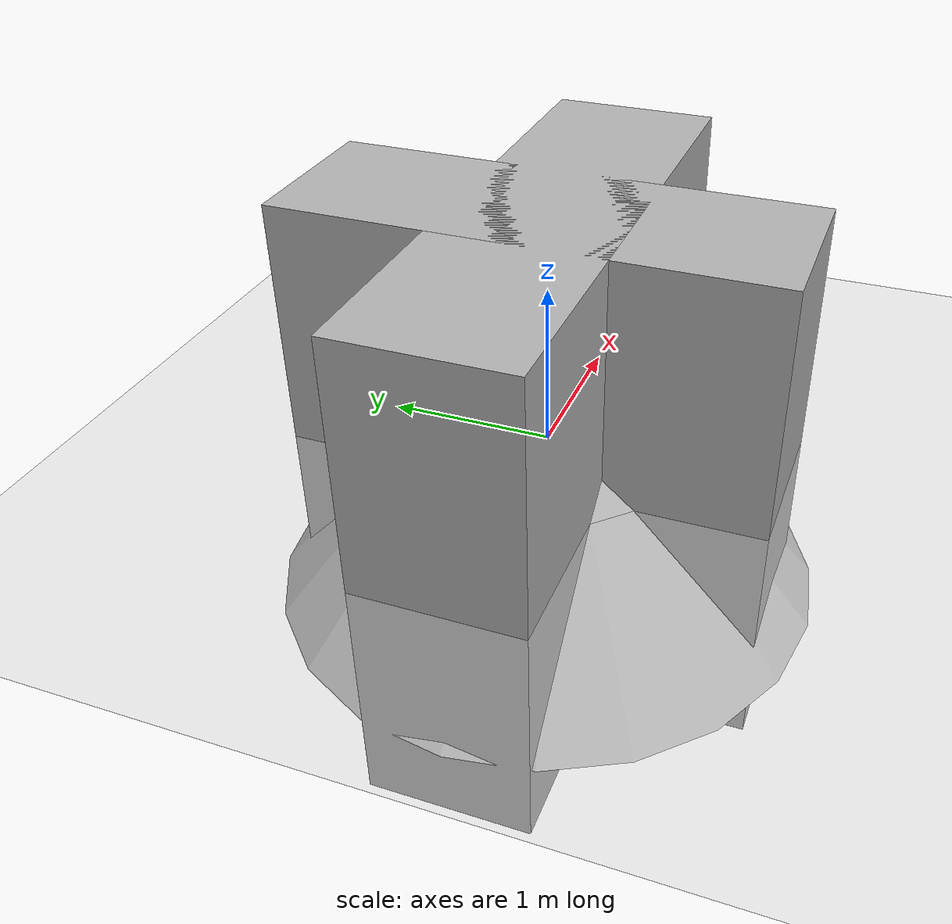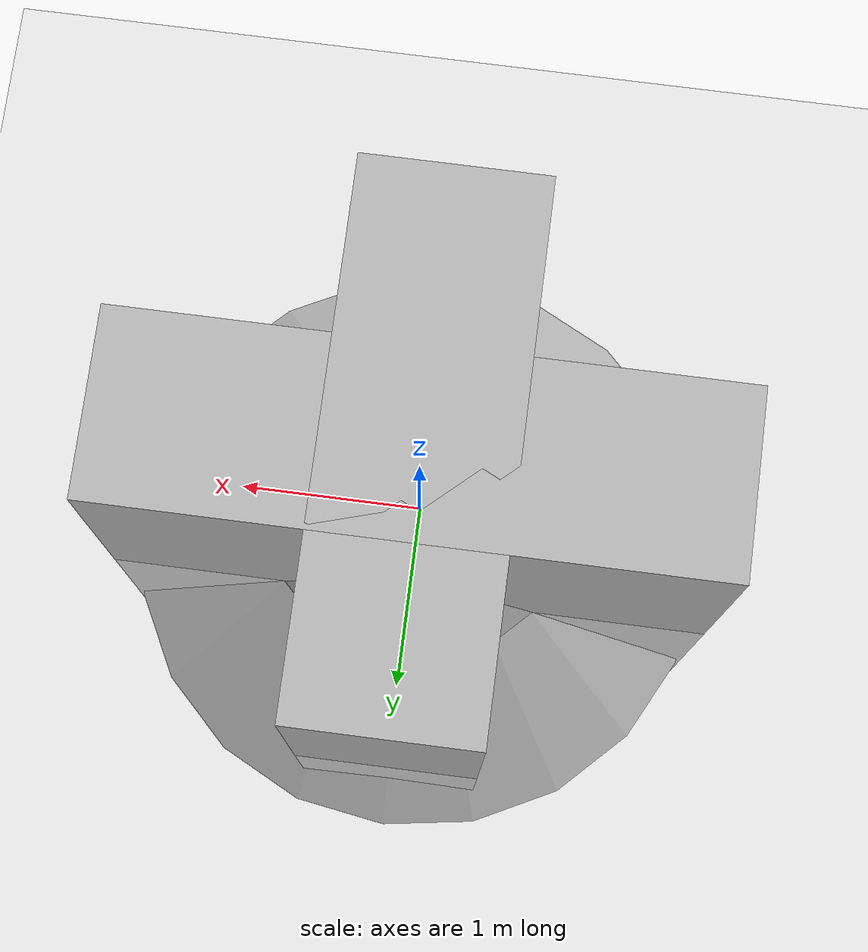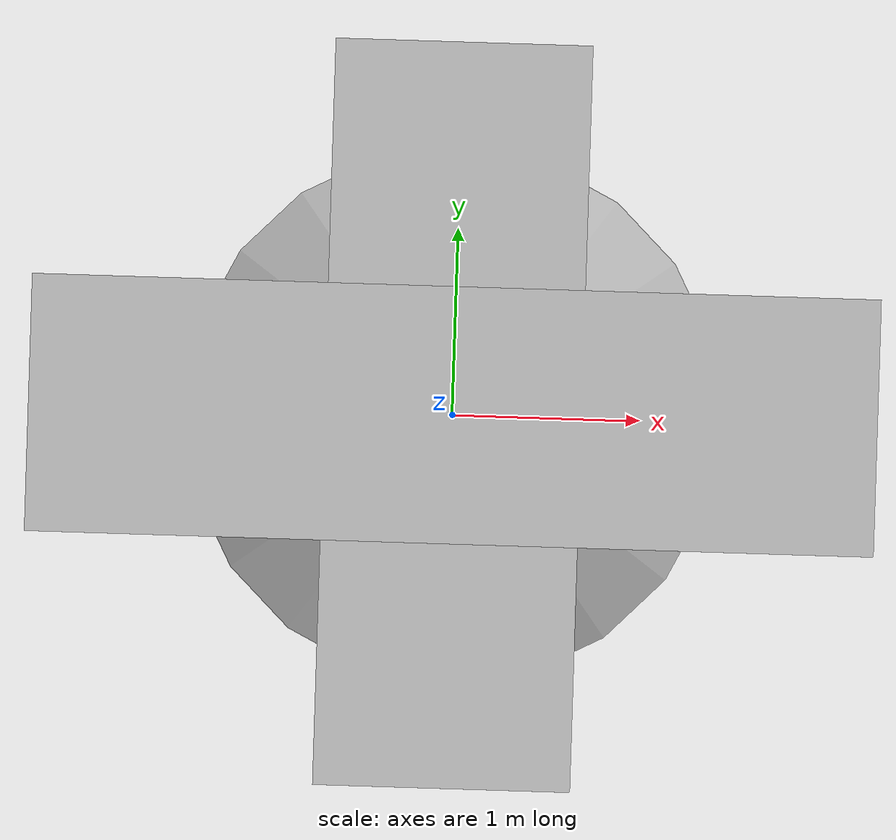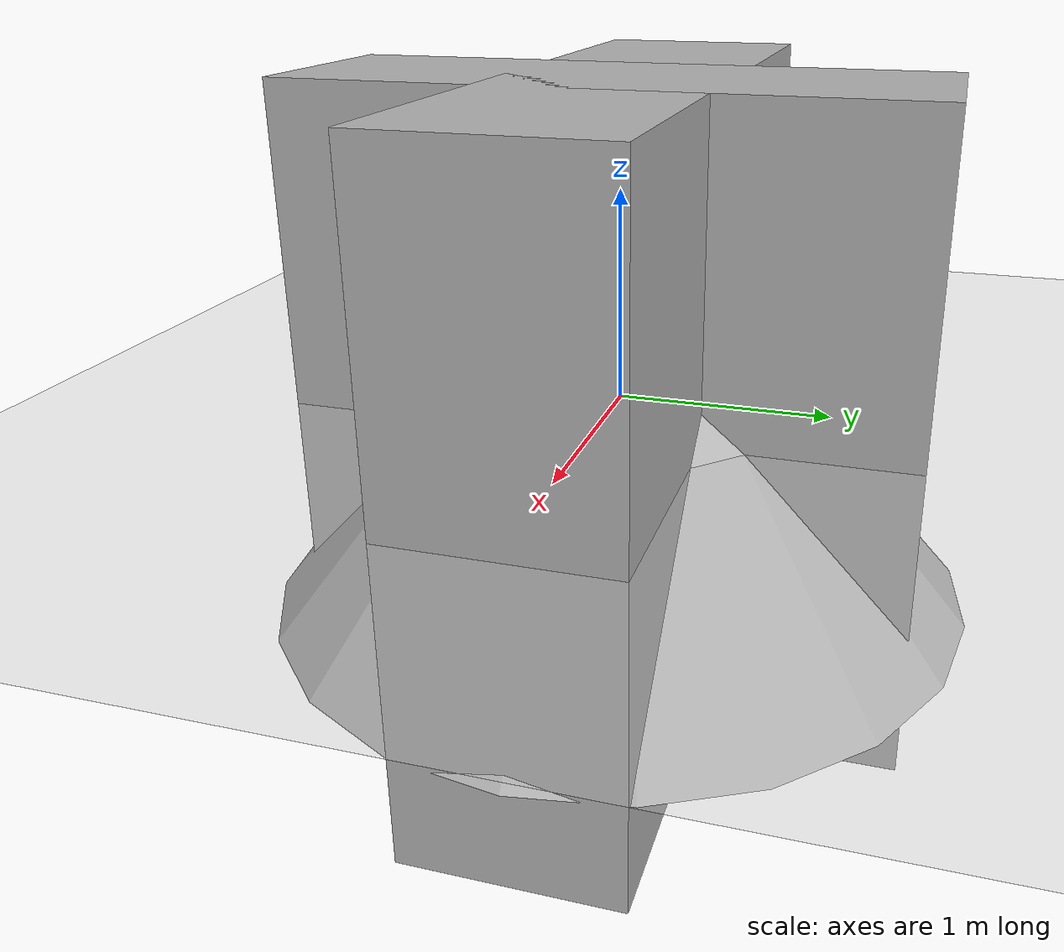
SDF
<?xml version='1.0' encoding='ASCII'?>
<sdf version='1.7'>
  <world name='beetlebot_world'>
    <physics name='1ms' type='ignored'>
      <max_step_size>0.01</max_step_size>
      <real_time_factor>1</real_time_factor>
    </physics>

        <plugin
            filename="gz-sim-physics-system"
            name="gz::sim::systems::Physics">
        </plugin>

        <plugin
            filename="gz-sim-user-commands-system"
            name="gz::sim::systems::UserCommands">
        </plugin>

        <plugin
            filename="gz-sim-scene-broadcaster-system"
            name="gz::sim::systems::SceneBroadcaster">
        </plugin>

        <!--  movment plugins to control robot using gzsim teleop with keyboard (No ROS) -->

    <!-- Moving Forward-->
    <plugin filename="gz-sim-triggered-publisher-system"
            name="gz::sim::systems::TriggeredPublisher">
        <input type="gz.msgs.Int32" topic="/keyboard/keypress">
            <match field="data">16777235</match>
        </input>
        <output type="gz.msgs.Twist" topic="/cmd_vel">
            linear: {x: 0.5}, angular: {z: 0.0}
        </output>
    </plugin>

    <!-- Moving Backward-->
    <plugin filename="gz-sim-triggered-publisher-system"
            name="gz::sim::systems::TriggeredPublisher">
        <input type="gz.msgs.Int32" topic="/keyboard/keypress">
            <match field="data">16777237</match>
        </input>
        <output type="gz.msgs.Twist" topic="/cmd_vel">
            linear: {x: -0.5}, angular: {z: 0.0}
        </output>
    </plugin>

    <!-- Moving Right-->
    <plugin filename="gz-sim-triggered-publisher-system"
            name="gz::sim::systems::TriggeredPublisher">
        <input type="gz.msgs.Int32" topic="/keyboard/keypress">
            <match field="data">16777236</match>
        </input>
        <output type="gz.msgs.Twist" topic="/cmd_vel">
            linear: {x: 0.0}, angular: {z: -0.5}
        </output>
    </plugin>

    <!-- Moving Left-->
    <plugin filename="gz-sim-triggered-publisher-system"
            name="gz::sim::systems::TriggeredPublisher">
        <input type="gz.msgs.Int32" topic="/keyboard/keypress">
            <match field="data">16777234</match>
        </input>
        <output type="gz.msgs.Twist" topic="/cmd_vel">
            linear: {x: 0.0}, angular: {z: 0.5}
        </output>
    </plugin>

    <!-- Stop the robot-->
    <plugin filename="gz-sim-triggered-publisher-system"
            name="gz::sim::systems::TriggeredPublisher">
        <input type="gz.msgs.Int32" topic="/keyboard/keypress">
            <match field="data">75</match>
        </input>
        <output type="gz.msgs.Twist" topic="/cmd_vel">
            linear: {x: 0.0}, angular: {z: 0.0}
        </output>
    </plugin>

    <scene>
      <ambient>1 1 1 1</ambient>
      <background>0.3 0.7 0.9 1</background>
      <shadows>0</shadows>
      <grid>1</grid>
    </scene>
    <light type="directional" name="sun">
        <cast_shadows>true</cast_shadows>
        <pose>0 0 10 0 0 0</pose>
        <diffuse>0.8 0.8 0.8 1</diffuse>
        <specular>0.2 0.2 0.2 1</specular>
        <attenuation>
            <range>1000</range>
            <constant>0.9</constant>
            <linear>0.01</linear>
            <quadratic>0.001</quadratic>
        </attenuation>
        <direction>-0.5 0.1 -0.9</direction>
    </light>

    <model name="ground_plane">
        <static>true</static>
        <link name="link">
            <collision name="collision">
                <geometry>
                    <plane>
                        <normal>0 0 1</normal>
                        <size>100 100</size>
                    </plane>
                </geometry>
                <surface>
                    <friction>
                        <ode>
                            <mu>100</mu>
                            <mu2>50</mu2>
                        </ode>
                    </friction>
                </surface>
            </collision>
            <visual name="visual">
                <cast_shadows>false</cast_shadows>
                <geometry>
                    <plane>
                        <normal>0 0 1</normal>
                        <size>100 100</size>
                    </plane>
                </geometry>
                <material>
                    <script>
                        <uri>file://media/materials/scripts/gazebo.material</uri>
                        <name>Gazebo/Grey</name>
                    </script>
                </material>
            </visual>
        </link>
    </model>

    <include>
        <pose>0 0 0.00 0.0 0.0 0.0</pose>
        <uri>model://house</uri>
    </include>

  </world>
</sdf>

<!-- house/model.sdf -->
<sdf version='1.6'>
  <model name='box_0'>
  <pose>26.280958351717622 3.5985589132294855 1.5 0 0 0</pose>
  <link name='box_link'>
    <inertial>
      <inertia>
        <ixx>0.16666</ixx>
        <ixy>0</ixy>
        <ixz>0</ixz>
        <iyy>0.16666</iyy>
        <iyz>0</iyz>
        <izz>0.16666</izz>
      </inertia>
      <mass>1</mass>
      <pose>0 0 0 0 0 0</pose>
    </inertial>
    <collision name='box_collision'>
      <geometry>
        <box>
          <size>3.2999999999999998 1 3</size>
        </box>
      </geometry>
      <surface>
        <friction>
          <ode/>
        </friction>
        <bounce/>
        <contact/>
      </surface>
    </collision>
    <visual name='box_visual'>
      <geometry>
        <box>
          <size>3.2999999999999998 1 3</size>
        </box>
      </geometry>
      <material>
        <ambient>0.300000012 0.300000012 0.300000012 1</ambient>
        <diffuse>0.699999988 0.699999988 0.699999988 1</diffuse>
        <specular>1 1 1 1</specular>
      </material>
    </visual>
    <pose>0 0 0 0 0 0</pose>
    <enable_wind>false</enable_wind>
  </link>
  <static>false</static>
  <self_collide>false</self_collide>
</model>
<model name='box_1'>
  <pose>25.124389120262173 5.530684439663352 1.5 0 0 0</pose>
  <link name='box_link'>
    <inertial>
      <inertia>
        <ixx>0.16666</ixx>
        <ixy>0</ixy>
        <ixz>0</ixz>
        <iyy>0.16666</iyy>
        <iyz>0</iyz>
        <izz>0.16666</izz>
      </inertia>
      <mass>1</mass>
      <pose>0 0 0 0 0 0</pose>
    </inertial>
    <collision name='box_collision'>
      <geometry>
        <box>
          <size>1 2.8999999999999999 3</size>
        </box>
      </geometry>
      <surface>
        <friction>
          <ode/>
        </friction>
        <bounce/>
        <contact/>
      </surface>
    </collision>
    <visual name='box_visual'>
      <geometry>
        <box>
          <size>1 2.8999999999999999 3</size>
        </box>
      </geometry>
      <material>
        <ambient>0.300000012 0.300000012 0.300000012 1</ambient>
        <diffuse>0.699999988 0.699999988 0.699999988 1</diffuse>
        <specular>1 1 1 1</specular>
      </material>
    </visual>
    <pose>0 0 0 0 0 0</pose>
    <enable_wind>false</enable_wind>
  </link>
  <static>false</static>
  <self_collide>false</self_collide>
</model>
<model name='box_2'>
  <pose>26.27839296780649 7.458628188131829 1.5 0 0 0</pose>
  <link name='box_link'>
    <inertial>
      <inertia>
        <ixx>0.16666</ixx>
        <ixy>0</ixy>
        <ixz>0</ixz>
        <iyy>0.16666</iyy>
        <iyz>0</iyz>
        <izz>0.16666</izz>
      </inertia>
      <mass>1</mass>
      <pose>0 0 0 0 0 0</pose>
    </inertial>
    <collision name='box_collision'>
      <geometry>
        <box>
          <size>3.2999999999999998 1 3</size>
        </box>
      </geometry>
      <surface>
        <friction>
          <ode/>
        </friction>
        <bounce/>
        <contact/>
      </surface>
    </collision>
    <visual name='box_visual'>
      <geometry>
        <box>
          <size>3.2999999999999998 1 3</size>
        </box>
      </geometry>
      <material>
        <ambient>0.300000012 0.300000012 0.300000012 1</ambient>
        <diffuse>0.699999988 0.699999988 0.699999988 1</diffuse>
        <specular>1 1 1 1</specular>
      </material>
    </visual>
    <pose>0 0 0 0 0 0</pose>
    <enable_wind>false</enable_wind>
  </link>
  <static>false</static>
  <self_collide>false</self_collide>
</model>
<model name='cone'>
  <pose>26.316259560213716 5.412128458975335 4.025538444519043 0 0 0</pose>
  <link name='cone_link'>
    <inertial>
      <inertia>
        <ixx>0.074999999999999997</ixx>
        <ixy>0</ixy>
        <ixz>0</ixz>
        <iyy>0.074999999999999997</iyy>
        <iyz>0</iyz>
        <izz>0.074999999999999997</izz>
      </inertia>
      <mass>1</mass>
      <pose>0 0 0 0 0 0</pose>
    </inertial>
    <collision name='cone_collision'>
      <geometry>
        <cone>
          <radius>2.5</radius>
          <length>2</length>
        </cone>
      </geometry>
      <surface>
        <friction>
          <ode/>
        </friction>
        <bounce/>
        <contact/>
      </surface>
    </collision>
    <visual name='cone_visual'>
      <geometry>
        <cone>
          <radius>1.7</radius>
          <length>2</length>
        </cone>
      </geometry>
      <material>
        <ambient>0.300000012 0.300000012 0.300000012 1</ambient>
        <diffuse>0.699999988 0.699999988 0.699999988 1</diffuse>
        <specular>1 1 1 1</specular>
      </material>
    </visual>
    <pose>0 0 0 0 0 0</pose>
    <enable_wind>false</enable_wind>
  </link>
  <static>false</static>
  <self_collide>false</self_collide>
</model>
</sdf>
